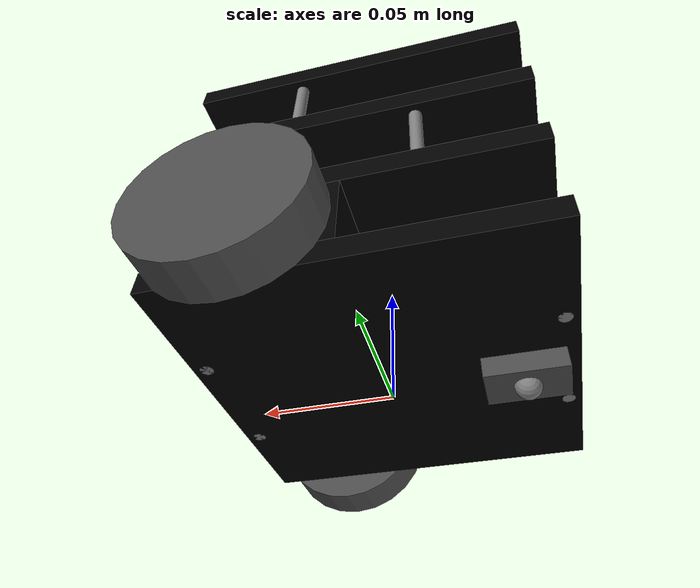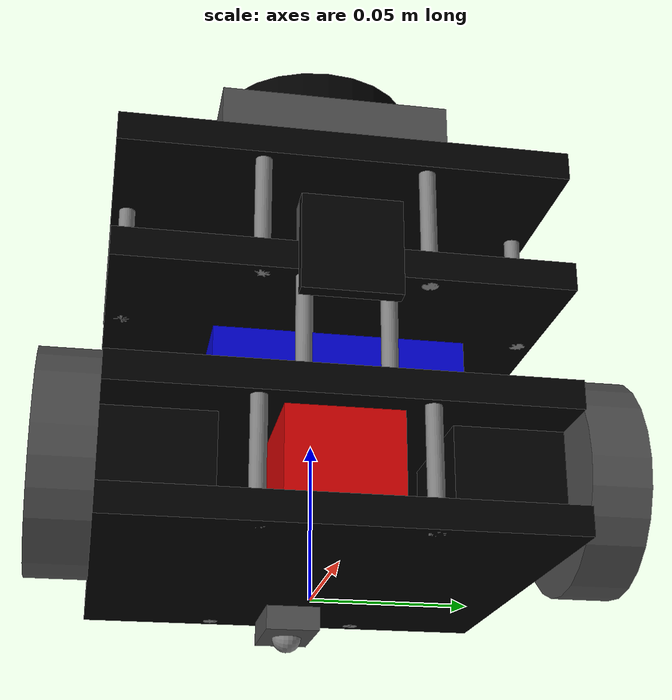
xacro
<?xml version="1.0"?>
<robot xmlns:xacro="http://www.ros.org/wiki/xacro" name="tb3_burger">

<xacro:include filename="$(find ros2_urdf_project)/xacro/actuators.xacro" />
<xacro:include filename="$(find ros2_urdf_project)/xacro/chassis.xacro" />
<xacro:include filename="$(find ros2_urdf_project)/xacro/electronics.xacro" />
<xacro:include filename="$(find ros2_urdf_project)/xacro/model_plugins.xacro" />
<xacro:include filename="$(find ros2_urdf_project)/xacro/physical_properties.xacro" />
<xacro:include filename="$(find ros2_urdf_project)/xacro/rviz_materials.xacro" />
<xacro:include filename="$(find ros2_urdf_project)/xacro/sensor_plugins.xacro" />
<xacro:include filename="$(find ros2_urdf_project)/xacro/sensors.xacro" />
<xacro:include filename="$(find ros2_urdf_project)/xacro/tb3_burger.gazebo.xacro" />
<xacro:include filename="$(find ros2_urdf_project)/xacro/wheels.xacro" />

<xacro:chassis_plate chassis_plate_name="chassis_plate_1"/>
<xacro:chassis_plate chassis_plate_name="chassis_plate_2"/>
<xacro:chassis_plate chassis_plate_name="chassis_plate_3"/>
<xacro:chassis_plate chassis_plate_name="chassis_plate_4"/>

<xacro:spacer35 spacer35_name="spacer35_1"/>
<xacro:spacer35 spacer35_name="spacer35_2"/>
<xacro:spacer35 spacer35_name="spacer35_3"/>
<xacro:spacer35 spacer35_name="spacer35_4"/>

<xacro:spacer45 spacer45_name="spacer45_1"/>
<xacro:spacer45 spacer45_name="spacer45_2"/>
<xacro:spacer45 spacer45_name="spacer45_3"/>
<xacro:spacer45 spacer45_name="spacer45_4"/>
<xacro:spacer45 spacer45_name="spacer45_5"/>
<xacro:spacer45 spacer45_name="spacer45_6"/>
<xacro:spacer45 spacer45_name="spacer45_7"/>
<xacro:spacer45 spacer45_name="spacer45_8"/>
<xacro:spacer45 spacer45_name="spacer45_9"/>
<xacro:spacer45 spacer45_name="spacer45_10"/>

<xacro:drive_motor drive_motor_name="drive_motor_1"/>
<xacro:drive_motor drive_motor_name="drive_motor_2"/>

<xacro:battery/>

<xacro:control_board/>
<xacro:raspi_board/>

<xacro:state_publisher/>
<xacro:differential_drive/>
<xacro:ros2_control/>

<xacro:rviz_materials/>

<xacro:lidar_plugin/>
<xacro:camera_plugin/>
<xacro:imu_plugin/>

<xacro:imu_chip/>
<xacro:camera/>
<xacro:lidar/>

<xacro:gazebo_elements/>

<xacro:wheel wheel_name="left_wheel"/>
<xacro:wheel wheel_name="right_wheel"/>

<xacro:caster_wheel/>

  <!-- Base link-->
  <link name="base_link"/>

  <!-- Chassis plate 1 joint-->
  <joint name="chassis_plate_1_joint" type="fixed">
    <origin rpy="0 0 0" xyz="0 0 0.010"/>
    <parent link="base_link"/>
    <child link="chassis_plate_1_link"/>
  </joint>

  <joint name="spacer45_1_joint" type="fixed">
    <origin rpy="0 0 0" xyz="-0.06375 -0.025 0.018"/>
    <parent link="chassis_plate_1_link"/>
    <child link="spacer45_1_link"/>
  </joint>

  <joint name="spacer45_2_joint" type="fixed">
    <origin rpy="0 0 0" xyz="-0.06375 0.025 0.018"/>
    <parent link="chassis_plate_1_link"/>
    <child link="spacer45_2_link"/>
  </joint>

  <joint name="spacer45_3_joint" type="fixed">
    <origin rpy="0 0 0" xyz="0.06375 -0.025 0.018"/>
    <parent link="chassis_plate_1_link"/>
    <child link="spacer45_3_link"/>
  </joint>

  <joint name="spacer45_4_joint" type="fixed">
    <origin rpy="0 0 0" xyz="0.06375 0.025 0.018"/>
    <parent link="chassis_plate_1_link"/>
    <child link="spacer45_4_link"/>
  </joint>

  <!-- Drive motors joints-->
  <joint name="drive_motor_1_joint" type="fixed">
    <origin rpy="0 0 0" xyz="0.0255 0.05175 0.01875"/>
    <parent link="chassis_plate_1_link"/>
    <child link="drive_motor_1_link"/>
  </joint>

  <joint name="drive_motor_2_joint" type="fixed">
    <origin rpy="0 0 0" xyz="0.0255 -0.05175 0.01875"/>
    <parent link="chassis_plate_1_link"/>
    <child link="drive_motor_2_link"/>
  </joint>

  <!-- Wheel joint -->
  <joint name="left_wheel_joint" type="continuous">
    <origin rpy="0 1.571 1.571" xyz="0.012 0.0259 0"/>
    <parent link="drive_motor_1_link"/>
    <child link="left_wheel_link"/>
    <axis rpy="0 0 0" xyz="0 0 1"/>
    <limit effort="10000" velocity="1000"/>
    <joint_properties damping="1.0" friction="1.0"/>
  </joint>

  <joint name="right_wheel_joint" type="continuous">
    <origin rpy="0 1.571 1.571" xyz="0.012 -0.0259 0"/>
    <parent link="drive_motor_2_link"/>
    <child link="right_wheel_link"/>
    <axis rpy="0 0 0" xyz="0 0 1"/>
    <limit effort="10000" velocity="1000"/>
    <joint_properties damping="1.0" friction="1.0"/>
  </joint>

  <!-- Caster wheel joint -->
  <joint name="caster_wheel_support_joint" type="fixed">
    <origin rpy="0 0 0" xyz="-0.04875 0 -0.0085"/>
    <parent link="chassis_plate_1_link"/>
    <child link="caster_wheel_support_link"/>
  </joint>

  <joint name="caster_wheel_yaw_joint" type="continuous">
    <origin rpy="0 0 0" xyz="0 0 -0.004"/>
    <parent link="caster_wheel_support_link"/>
    <child link="caster_wheel_yaw_link"/>
    <axis xyz="0 0 1"/>
    <limit effort="1000.0" velocity="100.0"/>
    <dynamics damping="0.0" friction="0.1"/>
  </joint>

  <joint name="caster_wheel_roll_joint" type="continuous">
    <origin rpy="0 0 0" xyz="0 0 0"/>
    <parent link="caster_wheel_yaw_link"/>
    <child link="caster_wheel_roll_link"/>
    <axis xyz="1 0 0"/>
    <limit effort="1000.0" velocity="100.0"/>
    <dynamics damping="0.0" friction="0.1"/>
  </joint>

  <joint name="caster_wheel_pitch_joint" type="continuous">
    <origin rpy="0 0 0" xyz="0 0 0"/>
    <parent link="caster_wheel_roll_link"/>
    <child link="caster_wheel_pitch_link"/>
    <axis xyz="0 1 0"/>
    <limit effort="1000.0" velocity="100.0"/>
    <dynamics damping="0.0" friction="0.1"/>
  </joint>

  <!-- Battery joint -->
  <joint name="battery_joint" type="fixed">
    <origin rpy="0 0 0" xyz="0.011625 0 0.01825"/>
    <parent link="chassis_plate_1_link"/>
    <child link="battery_link"/>
  </joint>

  <!-- Chassis plate 2 joint-->
  <joint name="chassis_plate_2_joint" type="fixed">
    <origin rpy="0 0 0" xyz="0 0 0.0375"/>
    <parent link="chassis_plate_1_link"/>
    <child link="chassis_plate_2_link"/>
  </joint>

  <joint name="spacer35_1_joint" type="fixed">
    <origin rpy="0 0 0" xyz="-0.024 -0.06375 0.018"/>
    <parent link="chassis_plate_2_link"/>
    <child link="spacer35_1_link"/>
  </joint>

  <joint name="spacer35_2_joint" type="fixed">
    <origin rpy="0 0 0" xyz="-0.024 0.06375 0.018"/>
    <parent link="chassis_plate_2_link"/>
    <child link="spacer35_2_link"/>
  </joint>

  <joint name="spacer35_3_joint" type="fixed">
    <origin rpy="0 0 0" xyz="0.06375 -0.0125 0.018"/>
    <parent link="chassis_plate_2_link"/>
    <child link="spacer35_3_link"/>
  </joint>

  <joint name="spacer35_4_joint" type="fixed">
    <origin rpy="0 0 0" xyz="0.06375 0.0125 0.018"/>
    <parent link="chassis_plate_2_link"/>
    <child link="spacer35_4_link"/>
  </joint>

  <joint name="control_board_joint" type="fixed">
    <origin rpy="0 0 0" xyz="0 0 0.0125"/>
    <parent link="chassis_plate_2_link"/>
    <child link="control_board_link"/>
  </joint>

  <!-- Chassis plate 3 joint-->
  <joint name="chassis_plate_3_joint" type="fixed">
    <origin rpy="0 0 0" xyz="0 0 0.0375"/>
    <parent link="chassis_plate_2_link"/>
    <child link="chassis_plate_3_link"/>
  </joint>

  <joint name="spacer45_5_joint" type="fixed">
    <origin rpy="0 0 0" xyz="0.06375 -0.025 0.018"/>
    <parent link="chassis_plate_3_link"/>
    <child link="spacer45_5_link"/>
  </joint>

  <joint name="spacer45_6_joint" type="fixed">
    <origin rpy="0 0 0" xyz="0.06375 0.025 0.018"/>
    <parent link="chassis_plate_3_link"/>
    <child link="spacer45_6_link"/>
  </joint>

  <joint name="spacer45_7_joint" type="fixed">
    <origin rpy="0 0 0" xyz="0.06375 -0.025 0.018"/>
    <parent link="chassis_plate_3_link"/>
    <child link="spacer45_7_link"/>
  </joint>

  <joint name="spacer45_8_joint" type="fixed">
    <origin rpy="0 0 0" xyz="0.06375 0.025 0.018"/>
    <parent link="chassis_plate_3_link"/>
    <child link="spacer45_8_link"/>
  </joint>

  <joint name="spacer45_9_joint" type="fixed">
    <origin rpy="0 0 0" xyz="0.024 -0.06375 0.018"/>
    <parent link="chassis_plate_3_link"/>
    <child link="spacer45_9_link"/>
  </joint>

  <joint name="spacer45_10_joint" type="fixed">
    <origin rpy="0 0 0" xyz="0.024 0.06375 0.018"/>
    <parent link="chassis_plate_3_link"/>
    <child link="spacer45_10_link"/>
  </joint>

  <!-- Raspberry Pi board joint -->
  <joint name="raspi_board_joint" type="fixed">
    <origin rpy="0 0 0" xyz="-0.030 0 0.01475"/>
    <parent link="chassis_plate_3_link"/>
    <child link="raspi_board_link"/>
  </joint>

  <!-- Lidar USB board joint -->
  <joint name="imu_chip_joint" type="fixed">
    <origin rpy="0 0 0" xyz="0.015 0 0.00675"/>
    <parent link="chassis_plate_3_link"/>
    <child link="imu_chip_link"/>
  </joint>

  <!-- Camera joint -->
  <joint name="camera_support_joint" type="fixed">
    <origin rpy="0 0 0" xyz="0.06625 0 0.01"/>
    <parent link="chassis_plate_3_link"/>
    <child link="camera_support_link"/>
  </joint>

  <joint name="camera_joint" type="fixed">
    <origin rpy="0 0 0" xyz="0.005 0 -0.0075"/>
    <parent link="camera_support_link"/>
    <child link="camera_link"/>
  </joint>

  <!-- Chassis plate 4 joint-->
  <joint name="chassis_plate_4_joint" type="fixed">
    <origin rpy="0 0 0" xyz="0 0 0.0375"/>
    <parent link="chassis_plate_3_link"/>
    <child link="chassis_plate_4_link"/>
  </joint>

  <!-- Lidar -->
  <joint name="lidar_support_joint" type="fixed">
    <origin rpy="0 0 3.142" xyz="0 0 0.01735"/>
    <parent link="chassis_plate_4_link"/>
    <child link="lidar_support_link"/>
  </joint>

  <joint name="lidar_spinner_joint" type="continuous">
    <origin rpy="0 0 0" xyz="0 0 0.02225"/>
    <parent link="lidar_support_link"/>
    <child link="lidar_spinner_link"/>
    <axis xyz="0 0 1"/>
    <limit effort="10.0" velocity="2.0"/>
    <dynamics friction="0.01"/>
  </joint>

</robot>

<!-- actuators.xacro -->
<robot xmlns:xacro="http://www.ros.org/wiki/xacro">

<xacro:property name="drive_width" value="0.0465"/>
<xacro:property name="drive_length" value="0.034"/>
<xacro:property name="drive_height" value="0.0285"/>

<xacro:macro name="drive_motor" params="drive_motor_name">

  <link name="${drive_motor_name}_link">
    <visual>
      <geometry>
        <box size="${drive_width} ${drive_length} ${drive_height}"/>
      </geometry>
      <material name="black"/>
    </visual>

    <collision>
      <geometry>
        <box size="${drive_width} ${drive_length} ${drive_height}"/>
      </geometry>
    </collision>

    <inertial>
      <mass value="0.035"/>
      <inertia ixx="5.5e-05" ixy="0.0e+00" ixz="0.0e+00" iyy="5.5e-05" iyz="0.0e+00" izz="1.1e-04"/>
    </inertial>
  </link>

</xacro:macro>

</robot>

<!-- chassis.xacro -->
<robot xmlns:xacro="http://www.ros.org/wiki/xacro">

<xacro:property name="chassis_width" value="0.1375"/>
<xacro:property name="chassis_length" value="0.1375"/>
<xacro:property name="chassis_height" value="0.009"/>

<xacro:property name="battery_width" value="0.100"/>
<xacro:property name="battery_length" value="0.035"/>
<xacro:property name="battery_height" value="0.0275"/>

<xacro:property name="drive_width" value="0.0465"/>
<xacro:property name="drive_length" value="0.034"/>
<xacro:property name="drive_height" value="0.0285"/>

<xacro:property name="spacer35_radius" value="0.0025"/>
<xacro:property name="spacer35_length" value="0.035"/>

<xacro:property name="spacer45_radius" value="0.0025"/>
<xacro:property name="spacer45_length" value="0.045"/>

<xacro:macro name="chassis_plate" params="chassis_plate_name">

  <link name="${chassis_plate_name}_link">
    <visual>
      <geometry>
        <box size="${chassis_width} ${chassis_length} ${chassis_height}"/>
      </geometry>
      <material name="black"/>
    </visual>

    <collision>
      <geometry>
        <box size="${chassis_width} ${chassis_length} ${chassis_height}"/>
      </geometry>
    </collision>

    <inertial>
      <mass value="0.035"/>
      <inertia ixx="5.5e-05" ixy="0.0e+00" ixz="0.0e+00" iyy="5.5e-05" iyz="0.0e+00" izz="1.1e-04"/>
    </inertial>
  </link>

</xacro:macro>

<xacro:macro name="battery">

  <link name="battery_link">
    <visual>
      <geometry>
        <box size="${battery_width} ${battery_length} ${battery_height}"/>
      </geometry>
      <material name="red"/>
    </visual>

    <collision>
      <geometry>
        <box size="${battery_width} ${battery_length} ${battery_height}"/>
      </geometry>
    </collision>

    <inertial>
      <mass value="0.200"/>
      <inertia ixx="3.3e-05" ixy="0.0e+00" ixz="0.0e+00" iyy="1.8e-04" iyz="0.0e+00" izz="1.9e-04"/>
    </inertial>
  </link>

</xacro:macro>

<xacro:macro name="spacer35" params="spacer35_name">

  <link name="${spacer35_name}_link">
    <visual>
      <geometry>
        <cylinder radius="${spacer35_radius}" length="${spacer35_length}"/>
      </geometry>
      <material name="grey"/>
    </visual>

    <collision>
      <geometry>
        <cylinder radius="${spacer35_radius}" length="${spacer35_length}"/>
      </geometry>
    </collision>

    <inertial>
      <mass value="0.007"/>
      <inertia ixx="7.3e-07" ixy="0.0e+00" ixz="0.0e+00" iyy="7.3e-07" iyz="0.0e+00" izz="2.2e-08"/>
    </inertial>
  </link>

</xacro:macro>

<xacro:macro name="spacer45" params="spacer45_name">

  <link name="${spacer45_name}_link">
    <visual>
      <geometry>
        <cylinder radius="${spacer45_radius}" length="${spacer45_length}"/>
      </geometry>
      <material name="grey"/>
    </visual>

    <collision>
      <geometry>
        <cylinder radius="${spacer45_radius}" length="${spacer45_length}"/>
      </geometry>
    </collision>

    <inertial>
      <mass value="0.009"/>
      <inertia ixx="1.5e-06" ixy="0.0e+00" ixz="0.0e+00" iyy="1.5e-06" iyz="0.0e+00" izz="2.8e-08"/>
    </inertial>
  </link>

</xacro:macro>

</robot>

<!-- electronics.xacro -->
<robot xmlns:xacro="http://www.ros.org/wiki/xacro">

<xacro:property name="control_width" value="0.105"/>
<xacro:property name="control_length" value="0.075"/>
<xacro:property name="control_height" value="0.016"/>

<xacro:property name="raspi_width" value="0.058"/>
<xacro:property name="raspi_length" value="0.090"/>
<xacro:property name="raspi_height" value="0.01935"/>

<xacro:macro name="control_board">

  <link name="control_board_link">
    <visual>
      <geometry>
        <box size="${control_width} ${control_length} ${control_height}"/>
      </geometry>
      <material name="blue"/>
    </visual>

    <collision>
      <geometry>
        <box size="${control_width} ${control_length} ${control_height}"/>
      </geometry>
    </collision>

    <inertial>
      <mass value="0.060"/>
      <inertia ixx="2.9e-05" ixy="0.0e+00" ixz="0.0e+00" iyy="5.6e-05" iyz="0.0e+00" izz="8.3e-05"/>
    </inertial>
  </link>

</xacro:macro>

<xacro:macro name="raspi_board">

  <link name="raspi_board_link">
    <visual>
      <geometry>
        <box size="${raspi_width} ${raspi_length} ${raspi_height}"/>
      </geometry>
      <material name="red"/>
    </visual>

    <collision>
      <geometry>
        <box size="${raspi_width} ${raspi_length} ${raspi_height}"/>
      </geometry>
    </collision>

    <inertial>
      <mass value="0.050"/>
      <inertia ixx="3.5e-05" ixy="0.0e+00" ixz="0.0e+00" iyy="1.6e-05" iyz="0.0e+00" izz="4.8e-05"/>
    </inertial>
  </link>

</xacro:macro>

</robot>

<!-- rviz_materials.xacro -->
<robot xmlns:xacro="http://www.ros.org/wiki/xacro">

<xacro:macro name="rviz_materials">

  <material name="black">
    <color rgba="0 0 0 1"/>
  </material>

  <material name="dark">
    <color rgba="0.3 0.3 0.3 1"/>
  </material>

  <material name="grey">
    <color rgba="0.5 0.5 0.5 1"/>
  </material>

  <material name="red">
    <color rgba="0.8 0.0 0.0 1"/>
  </material>

  <material name="blue">
    <color rgba="0.0 0.0 0.8 1"/>
  </material>

</xacro:macro>

</robot>

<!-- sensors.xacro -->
<robot xmlns:xacro="http://www.ros.org/wiki/xacro">

<xacro:property name="imu_width" value="0.005"/>
<xacro:property name="imu_length" value="0.005"/>
<xacro:property name="imu_height" value="0.0025"/>

<xacro:property name="camera_support_width" value="0.005"/>
<xacro:property name="camera_support_length" value="0.030"/>
<xacro:property name="camera_support_height" value="0.015"/>

<xacro:property name="camera_width" value="0.005"/>
<xacro:property name="camera_length" value="0.030"/>
<xacro:property name="camera_height" value="0.030"/>

<xacro:property name="lidar_support_width" value="0.0947"/>
<xacro:property name="lidar_support_length" value="0.0727"/>
<xacro:property name="lidar_support_height" value="0.0257"/>

<xacro:property name="lidar_spinner_radius" value="0.0327"/>
<xacro:property name="lidar_spinner_length" value="0.0188"/>

<xacro:macro name="imu_chip">

  <link name="imu_chip_link">
    <visual>
      <geometry>
        <box size="${imu_width} ${imu_length} ${imu_height}"/>
      </geometry>
      <material name="blue"/>
    </visual>

    <collision>
      <geometry>
        <box size="${imu_width} ${imu_length} ${imu_height}"/>
      </geometry>
    </collision>

    <inertial>
      <mass value="0.002"/>
      <inertia ixx="5.2e-09" ixy="0.0e+00" ixz="0.0e+00" iyy="5.2e-09" iyz="0.0e+00" izz="8.3e-09"/>
    </inertial>
  </link>

</xacro:macro>

<xacro:macro name="camera">

  <link name="camera_support_link">
    <visual>
      <geometry>
        <box size="${camera_support_width} ${camera_support_length} ${camera_support_height}"/>
      </geometry>
      <material name="dark"/>
    </visual>

    <collision>
      <geometry>
        <box size="${camera_support_width} ${camera_support_length} ${camera_support_height}"/>
      </geometry>
    </collision>

    <inertial>
      <mass value="0.010"/>
      <inertia ixx="9.4e-07" ixy="0.0e+00" ixz="0.0e+00" iyy="2.1e-07" iyz="0.0e+00" izz="7.7e-07"/>
    </inertial>
  </link>

  <link name="camera_link">
    <visual>
      <geometry>
        <box size="${camera_width} ${camera_length} ${camera_height}"/>
      </geometry>
      <material name="black"/>
    </visual>

    <collision>
      <geometry>
        <box size="${camera_width} ${camera_length} ${camera_height}"/>
      </geometry>
    </collision>

    <inertial>
      <mass value="0.010"/>
      <inertia ixx="9.4e-07" ixy="0.0e+00" ixz="0.0e+00" iyy="2.1e-07" iyz="0.0e+00" izz="7.7e-07"/>
    </inertial>
  </link>

</xacro:macro>

<xacro:macro name="lidar">

  <link name="lidar_support_link">
    <visual>
      <geometry>
        <box size="${lidar_support_width} ${lidar_support_length} ${lidar_support_height}"/>
      </geometry>
      <material name="dark"/>
    </visual>

    <collision>
      <geometry>
        <box size="${lidar_support_width} ${lidar_support_length} ${lidar_support_height}"/>
      </geometry>
    </collision>

    <inertial>
      <mass value="0.100"/>
      <inertia ixx="5.0e-05" ixy="0.0e+00" ixz="0.0e+00" iyy="8.0e-05" iyz="0.0e+00" izz="1.2e-04"/>
    </inertial>
  </link>

  <link name="lidar_spinner_link">
    <visual>
      <geometry>
        <cylinder radius="${lidar_spinner_radius}" length="${lidar_spinner_length}"/>
      </geometry>
      <material name="black"/>
    </visual>

    <collision>
      <geometry>
        <cylinder radius="${lidar_spinner_radius}" length="${lidar_spinner_length}"/>
      </geometry>
    </collision>

    <inertial>
      <mass value="0.050"/>
      <inertia ixx="1.5e-05" ixy="0.0e+00" ixz="0.0e+00" iyy="1.5e-05" iyz="0.0e+00" izz="2.7e-05"/>
    </inertial>
  </link>

</xacro:macro>

</robot>

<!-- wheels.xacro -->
<robot xmlns:xacro="http://www.ros.org/wiki/xacro">

<xacro:property name="wheel_radius" value="0.033"/>
<xacro:property name="wheel_length" value="0.0178"/>

<xacro:property name="caster_support_width" value="0.030"/>
<xacro:property name="caster_support_length" value="0.018"/>
<xacro:property name="caster_support_height" value="0.008"/>

<xacro:property name="dummy_radius" value="0.0045000000000000005"/>
<xacro:property name="dummy_length" value="0.001"/>

<xacro:macro name="wheel" params="wheel_name">

  <link name="${wheel_name}_link">
    <visual>
      <geometry>
        <cylinder radius="${wheel_radius}" length="${wheel_length}"/>
      </geometry>
      <material name="dark"/>
    </visual>

    <collision>
      <geometry>
        <cylinder radius="${wheel_radius}" length="${wheel_length}"/>
      </geometry>
    </collision>

    <inertial>
      <mass value="0.025"/>
      <inertia ixx="7.5e-06" ixy="0.0e+00" ixz="0.0e+00" iyy="7.5e-06" iyz="0.0e+00" izz="1.4e-05"/>
    </inertial>
  </link>
</xacro:macro>

<xacro:macro name="caster_wheel">

  <link name="caster_wheel_support_link">
    <visual>
      <geometry>
        <box size="${caster_support_width} ${caster_support_length} ${caster_support_height}"/>
      </geometry>
      <material name="dark"/>
    </visual>

    <collision>
      <geometry>
        <box size="${caster_support_width} ${caster_support_length} ${caster_support_height}"/>
      </geometry>
    </collision>

    <inertial>
      <mass value="0.010"/>
      <inertia ixx="3.2e-07" ixy="0.0e+00" ixz="0.0e+00" iyy="8.0e-07" iyz="0.0e+00" izz="1.0e-06"/>
    </inertial>
  </link>

  <link name="caster_wheel_yaw_link">
      <visual>
        <origin rpy="0 1.5707 1.5707" xyz="0 0 0"/>
        <geometry>
          <cylinder radius="${dummy_radius}" length="${dummy_length}"/>
        </geometry>
        <material name="blue"/>
      </visual>

      <collision>
        <origin rpy="0 1.5707 1.5707" xyz="0 0 0"/>
        <geometry>
          <cylinder radius="${dummy_radius}" length="${dummy_length}"/>
        </geometry>
      </collision>

      <inertial>
          <origin rpy="0 1.5707 1.5707" xyz="0 0 0"/>
          <mass value="0.001"/>
          <inertia ixx="5.145833333333334e-09" ixy="0" ixz="0" iyy="5.145833333333334e-09" iyz="0" izz="1.0125000000000003e-08"/>
      </inertial>
  </link>

  <link name="caster_wheel_roll_link">
      <visual>
        <origin rpy="0 1.5707 1.5707" xyz="0 0 0"/>
        <geometry>
          <cylinder radius="${dummy_radius}" length="${dummy_length}"/>
        </geometry>
        <material name="red"/>
      </visual>

      <collision>
        <origin rpy="0 1.5707 1.5707" xyz="0 0 0"/>
        <geometry>
          <cylinder radius="${dummy_radius}" length="${dummy_length}"/>
        </geometry>
      </collision>

      <inertial>
          <origin rpy="0 1.5707 1.5707" xyz="0 0 0"/>
          <mass value="0.001"/>
          <inertia ixx="5.145833333333334e-09" ixy="0" ixz="0" iyy="5.145833333333334e-09" iyz="0" izz="1.0125000000000003e-08"/>
      </inertial>
  </link>

  <link name="caster_wheel_pitch_link">
    <visual>
      <origin rpy="0 1.5707 1.5707" xyz="0 0 0"/>
      <geometry>
        <sphere radius="0.005"/>
      </geometry>
      <material name="grey"/>
    </visual>

    <collision>
      <origin rpy="0 1.5707 1.5707" xyz="0 0 0"/>
      <geometry>
        <sphere radius="0.005"/>
      </geometry>
    </collision>

    <inertial>
        <origin rpy="0 1.5707 1.5707" xyz="0 0 0"/>
        <mass value="0.010"/>
      <inertia ixx="1.0e-07" ixy="0.0e+00" ixz="0.0e+00" iyy="1.0e-07" iyz="0.0e+00" izz="1.0e-07" />
    </inertial>
  </link>

</xacro:macro>

</robot>
